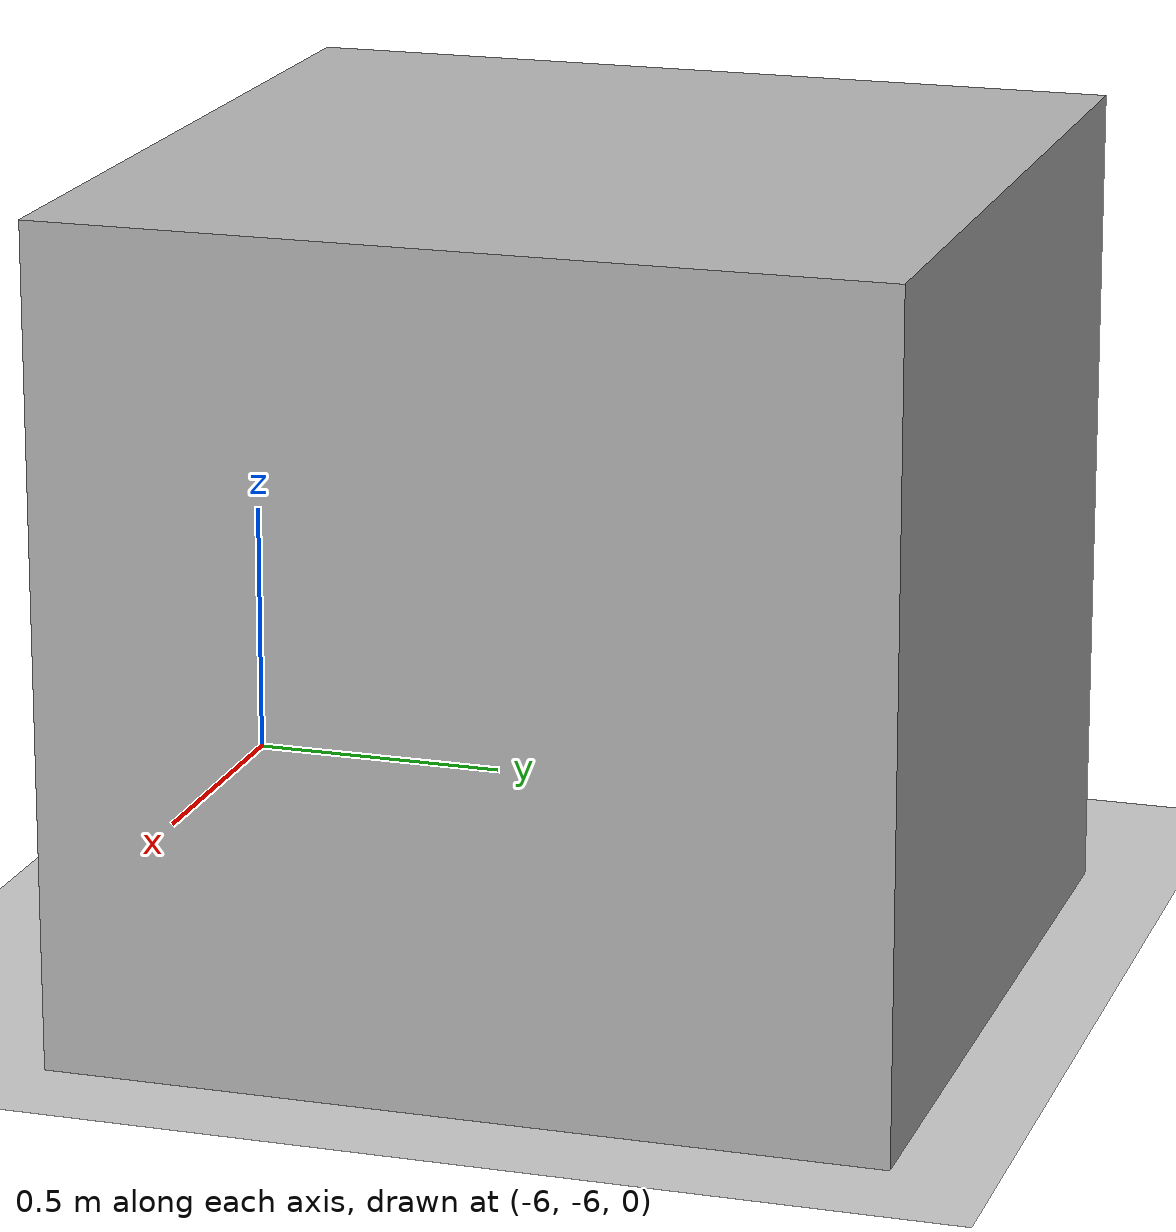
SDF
<?xml version="1.0"?>
<sdf version="1.4">
<world name="default_world">

<!-- ############################################################## Rendering-->
<gui>
  <camera name="default_camera_view">
    <pose>0 0 3 0 0 0</pose>
  </camera>
</gui>

<!-- ######################################################## Include physics-->
<include>
      <uri>model://sun</uri>
</include>
<!-- ############################# Ground (see commented line to add texture) -->
<model name="ground_plane">
  <static>true</static>
    <link name="link">
      <collision name="collision">
        <geometry>
          <plane>
            <normal>0 0 1</normal>
            <size>100 100</size>
          </plane>
        </geometry>
        <surface>
          <friction>
            <ode>
              <mu>100</mu>
              <mu2>50</mu2>
            </ode>
          </friction>
        </surface>
      </collision>
      <visual name="visual">
        <cast_shadows>false</cast_shadows>
        <geometry>
          <plane>
            <normal>0 0 1</normal>
            <size>100 100</size>
          </plane>
        </geometry>
      </visual>
    </link>
  </model>

<!-- ############################################### Lander (to be detected) -->
<model name="lander">
 <static>true</static>
 <!-- %%%%%%%%%%%%%%%%%%%%%%%%%%%%%%%%%%%%%%%%%%%%%%%%%%%%%%%%%%%%%% Box-->
 <link name='lander_box'>
    <pose>-5 -5 .75 0 0 0</pose>
      <collision name='collision'>
             <geometry>
               <box>
                 <size>1.5 1.5 1.5</size>
               </box>
             </geometry>
       </collision>
       <visual name='visual'>
         <geometry>
           <box>
            <size>1.5 1.5 1.5</size>
            </box>
          </geometry>
        </visual>
 </link>
 </model>
</world>
</sdf>
